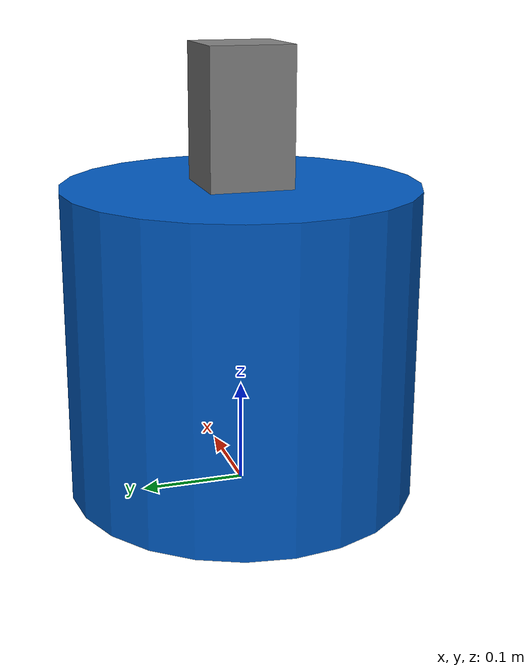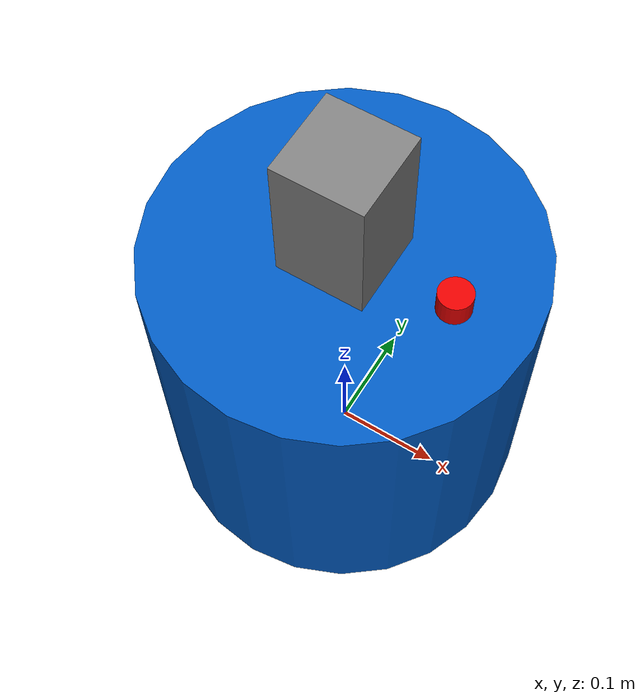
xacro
<?xml version="1.0"?>
<robot xmlns:xacro="http://www.ros.org/wiki/xacro" name="talebot27">
  <material name="team_blue"><color rgba="0.0 0.35 0.75 1.0"/></material>
  <material name="emergency_red"><color rgba="0.9 0.0 0.0 1.0"/></material>
  <material name="mast_grey"><color rgba="0.5 0.5 0.5 1.0"/></material>
  <material name="black"><color rgba="0.1 0.1 0.1 1.0"/></material>

  <link name="base_footprint"/>
  <link name="base_link">
    <visual>
      <geometry><cylinder radius="0.17" length="0.30"/></geometry>
      <material name="team_blue"/>
    </visual>
  </link>
  <joint name="base_joint" type="fixed">
    <parent link="base_footprint"/>
    <child link="base_link"/>
    <origin xyz="0 0 0.15" rpy="0 0 0"/>
  </joint>

  <link name="beacon_support">
    <visual>
      <geometry><box size="0.08 0.08 0.13"/></geometry>
      <material name="mast_grey"/>
    </visual>
  </link>
  <joint name="beacon_support_joint" type="fixed">
    <parent link="base_link"/>
    <child link="beacon_support"/>
    <origin xyz="0 0 0.215" rpy="0 0 0"/>
  </joint>

  <link name="emergency_button">
    <visual>
      <geometry><cylinder radius="0.015" length="0.025"/></geometry>
      <material name="emergency_red"/>
    </visual>
  </link>
  <joint name="emergency_button_joint" type="fixed">
    <parent link="base_link"/>
    <child link="emergency_button"/>
    <origin xyz="0.10 0 0.16" rpy="0 0 0"/>
  </joint>

  <link name="laser_frame">
    <visual>
      <geometry><cylinder radius="0.035" length="0.04"/></geometry>
      <material name="black"/>
    </visual>
  </link>
  <joint name="laser_joint" type="fixed">
    <parent link="base_link"/>
    <child link="laser_frame"/>
    <origin xyz="0 0 0.17" rpy="0 0 0"/>
  </joint>

  <link name="imu_frame"/>
  <joint name="imu_joint" type="fixed">
    <parent link="base_link"/>
    <child link="imu_frame"/>
    <origin xyz="0.05 0 0" rpy="0 0 0"/>
  </joint>
</robot>
